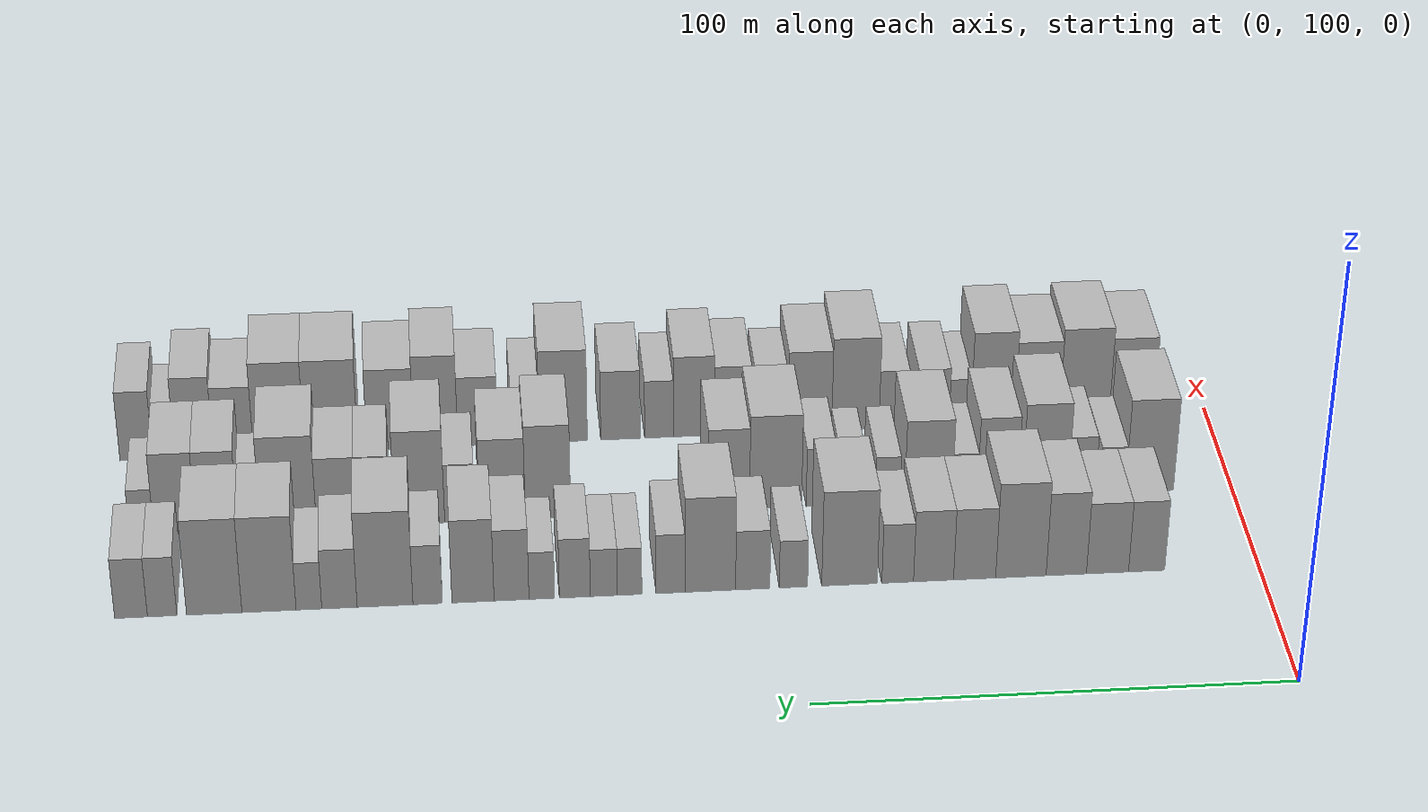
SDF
<sdf version="1.6">
 <world name="default">
  <model name="building_47">
   <static>1</static>
   <pose>50.0000 124.1388 0 0.000000 0.000000 0.000000</pose>
   <link name="link">
    <pose>0 0 9.00 0 0 0</pose>
    <collision name="collision"><geometry><box><size>20.0000 7.7543 18.0000</size></box></geometry></collision>
    <visual name="visual">
     <cast_shadows>0</cast_shadows>
     <geometry><box><size>20.0000 7.7543 18.0000</size></box></geometry>
     <material>
      <script>
       <uri>model://HANNAS_wall/materials/scripts</uri>
       <uri>model://HANNAS_wall/materials/textures</uri>
       <name>vrc/HANNAS_wall</name>
      </script>
     </material>
    </visual>
   </link>
  </model>
  <model name="building_48">
   <static>1</static>
   <pose>50.0000 132.5141 0 0.000000 0.000000 0.000000</pose>
   <link name="link">
    <pose>0 0 9.00 0 0 0</pose>
    <collision name="collision"><geometry><box><size>20.0000 8.9964 18.0000</size></box></geometry></collision>
    <visual name="visual">
     <cast_shadows>0</cast_shadows>
     <geometry><box><size>20.0000 8.9964 18.0000</size></box></geometry>
     <material>
      <script>
       <uri>model://HANNAS_wall/materials/scripts</uri>
       <uri>model://HANNAS_wall/materials/textures</uri>
       <name>vrc/HANNAS_wall</name>
      </script>
     </material>
    </visual>
   </link>
  </model>
  <model name="building_49">
   <static>1</static>
   <pose>50.0000 141.3249 0 0.000000 0.000000 0.000000</pose>
   <link name="link">
    <pose>0 0 10.50 0 0 0</pose>
    <collision name="collision"><geometry><box><size>20.0000 8.6251 21.0000</size></box></geometry></collision>
    <visual name="visual">
     <cast_shadows>0</cast_shadows>
     <geometry><box><size>20.0000 8.6251 21.0000</size></box></geometry>
     <material>
      <script>
       <uri>model://HANNAS_wall/materials/scripts</uri>
       <uri>model://HANNAS_wall/materials/textures</uri>
       <name>vrc/HANNAS_wall</name>
      </script>
     </material>
    </visual>
   </link>
  </model>
  <model name="building_50">
   <static>1</static>
   <pose>50.0000 151.0222 0 0.000000 0.000000 0.000000</pose>
   <link name="link">
    <pose>0 0 12.00 0 0 0</pose>
    <collision name="collision"><geometry><box><size>20.0000 10.7695 24.0000</size></box></geometry></collision>
    <visual name="visual">
     <cast_shadows>0</cast_shadows>
     <geometry><box><size>20.0000 10.7695 24.0000</size></box></geometry>
     <material>
      <script>
       <uri>model://HANNAS_wall/materials/scripts</uri>
       <uri>model://HANNAS_wall/materials/textures</uri>
       <name>vrc/HANNAS_wall</name>
      </script>
     </material>
    </visual>
   </link>
  </model>
  <model name="building_51">
   <static>1</static>
   <pose>50.0000 160.8869 0 0.000000 0.000000 0.000000</pose>
   <link name="link">
    <pose>0 0 9.00 0 0 0</pose>
    <collision name="collision"><geometry><box><size>20.0000 8.9600 18.0000</size></box></geometry></collision>
    <visual name="visual">
     <cast_shadows>0</cast_shadows>
     <geometry><box><size>20.0000 8.9600 18.0000</size></box></geometry>
     <material>
      <script>
       <uri>model://HANNAS_wall/materials/scripts</uri>
       <uri>model://HANNAS_wall/materials/textures</uri>
       <name>vrc/HANNAS_wall</name>
      </script>
     </material>
    </visual>
   </link>
  </model>
  <model name="building_52">
   <static>1</static>
   <pose>50.0000 169.6268 0 0.000000 0.000000 0.000000</pose>
   <link name="link">
    <pose>0 0 9.00 0 0 0</pose>
    <collision name="collision"><geometry><box><size>20.0000 8.5196 18.0000</size></box></geometry></collision>
    <visual name="visual">
     <cast_shadows>0</cast_shadows>
     <geometry><box><size>20.0000 8.5196 18.0000</size></box></geometry>
     <material>
      <script>
       <uri>model://HANNAS_wall/materials/scripts</uri>
       <uri>model://HANNAS_wall/materials/textures</uri>
       <name>vrc/HANNAS_wall</name>
      </script>
     </material>
    </visual>
   </link>
  </model>
  <model name="building_53">
   <static>1</static>
   <pose>50.0000 177.2516 0 0.000000 0.000000 0.000000</pose>
   <link name="link">
    <pose>0 0 7.50 0 0 0</pose>
    <collision name="collision"><geometry><box><size>20.0000 6.7302 15.0000</size></box></geometry></collision>
    <visual name="visual">
     <cast_shadows>0</cast_shadows>
     <geometry><box><size>20.0000 6.7302 15.0000</size></box></geometry>
     <material>
      <script>
       <uri>model://HANNAS_wall/materials/scripts</uri>
       <uri>model://HANNAS_wall/materials/textures</uri>
       <name>vrc/HANNAS_wall</name>
      </script>
     </material>
    </visual>
   </link>
  </model>
  <model name="building_54">
   <static>1</static>
   <pose>50.0000 187.4928 0 0.000000 0.000000 0.000000</pose>
   <link name="link">
    <pose>0 0 12.00 0 0 0</pose>
    <collision name="collision"><geometry><box><size>20.0000 11.7522 24.0000</size></box></geometry></collision>
    <visual name="visual">
     <cast_shadows>0</cast_shadows>
     <geometry><box><size>20.0000 11.7522 24.0000</size></box></geometry>
     <material>
      <script>
       <uri>model://HANNAS_wall/materials/scripts</uri>
       <uri>model://HANNAS_wall/materials/textures</uri>
       <name>vrc/HANNAS_wall</name>
      </script>
     </material>
    </visual>
   </link>
  </model>
  <model name="building_55">
   <static>1</static>
   <pose>50.0000 199.3592 0 0.000000 0.000000 0.000000</pose>
   <link name="link">
    <pose>0 0 6.00 0 0 0</pose>
    <collision name="collision"><geometry><box><size>20.0000 5.9805 12.0000</size></box></geometry></collision>
    <visual name="visual">
     <cast_shadows>0</cast_shadows>
     <geometry><box><size>20.0000 5.9805 12.0000</size></box></geometry>
     <material>
      <script>
       <uri>model://HANNAS_wall/materials/scripts</uri>
       <uri>model://HANNAS_wall/materials/textures</uri>
       <name>vrc/HANNAS_wall</name>
      </script>
     </material>
    </visual>
   </link>
  </model>
  <model name="building_56">
   <static>1</static>
   <pose>50.0000 207.9593 0 0.000000 0.000000 0.000000</pose>
   <link name="link">
    <pose>0 0 7.50 0 0 0</pose>
    <collision name="collision"><geometry><box><size>20.0000 7.2197 15.0000</size></box></geometry></collision>
    <visual name="visual">
     <cast_shadows>0</cast_shadows>
     <geometry><box><size>20.0000 7.2197 15.0000</size></box></geometry>
     <material>
      <script>
       <uri>model://HANNAS_wall/materials/scripts</uri>
       <uri>model://HANNAS_wall/materials/textures</uri>
       <name>vrc/HANNAS_wall</name>
      </script>
     </material>
    </visual>
   </link>
  </model>
  <model name="building_57">
   <static>1</static>
   <pose>50.0000 216.9235 0 0.000000 0.000000 0.000000</pose>
   <link name="link">
    <pose>0 0 12.00 0 0 0</pose>
    <collision name="collision"><geometry><box><size>20.0000 10.7086 24.0000</size></box></geometry></collision>
    <visual name="visual">
     <cast_shadows>0</cast_shadows>
     <geometry><box><size>20.0000 10.7086 24.0000</size></box></geometry>
     <material>
      <script>
       <uri>model://HANNAS_wall/materials/scripts</uri>
       <uri>model://HANNAS_wall/materials/textures</uri>
       <name>vrc/HANNAS_wall</name>
      </script>
     </material>
    </visual>
   </link>
  </model>
  <model name="building_58">
   <static>1</static>
   <pose>50.0000 225.3193 0 0.000000 0.000000 0.000000</pose>
   <link name="link">
    <pose>0 0 7.50 0 0 0</pose>
    <collision name="collision"><geometry><box><size>20.0000 6.0830 15.0000</size></box></geometry></collision>
    <visual name="visual">
     <cast_shadows>0</cast_shadows>
     <geometry><box><size>20.0000 6.0830 15.0000</size></box></geometry>
     <material>
      <script>
       <uri>model://HANNAS_wall/materials/scripts</uri>
       <uri>model://HANNAS_wall/materials/textures</uri>
       <name>vrc/HANNAS_wall</name>
      </script>
     </material>
    </visual>
   </link>
  </model>
  <model name="building_59">
   <static>1</static>
   <pose>50.0000 233.9347 0 0.000000 0.000000 0.000000</pose>
   <link name="link">
    <pose>0 0 6.00 0 0 0</pose>
    <collision name="collision"><geometry><box><size>20.0000 5.1478 12.0000</size></box></geometry></collision>
    <visual name="visual">
     <cast_shadows>0</cast_shadows>
     <geometry><box><size>20.0000 5.1478 12.0000</size></box></geometry>
     <material>
      <script>
       <uri>model://HANNAS_wall/materials/scripts</uri>
       <uri>model://HANNAS_wall/materials/textures</uri>
       <name>vrc/HANNAS_wall</name>
      </script>
     </material>
    </visual>
   </link>
  </model>
  <model name="building_60">
   <static>1</static>
   <pose>50.0000 239.3554 0 0.000000 0.000000 0.000000</pose>
   <link name="link">
    <pose>0 0 6.00 0 0 0</pose>
    <collision name="collision"><geometry><box><size>20.0000 5.6937 12.0000</size></box></geometry></collision>
    <visual name="visual">
     <cast_shadows>0</cast_shadows>
     <geometry><box><size>20.0000 5.6937 12.0000</size></box></geometry>
     <material>
      <script>
       <uri>model://HANNAS_wall/materials/scripts</uri>
       <uri>model://HANNAS_wall/materials/textures</uri>
       <name>vrc/HANNAS_wall</name>
      </script>
     </material>
    </visual>
   </link>
  </model>
  <model name="building_61">
   <static>1</static>
   <pose>50.0000 245.4495 0 0.000000 0.000000 0.000000</pose>
   <link name="link">
    <pose>0 0 7.50 0 0 0</pose>
    <collision name="collision"><geometry><box><size>20.0000 6.4945 15.0000</size></box></geometry></collision>
    <visual name="visual">
     <cast_shadows>0</cast_shadows>
     <geometry><box><size>20.0000 6.4945 15.0000</size></box></geometry>
     <material>
      <script>
       <uri>model://HANNAS_wall/materials/scripts</uri>
       <uri>model://HANNAS_wall/materials/textures</uri>
       <name>vrc/HANNAS_wall</name>
      </script>
     </material>
    </visual>
   </link>
  </model>
  <model name="building_62">
   <static>1</static>
   <pose>50.0000 252.3858 0 0.000000 0.000000 0.000000</pose>
   <link name="link">
    <pose>0 0 6.00 0 0 0</pose>
    <collision name="collision"><geometry><box><size>20.0000 5.3780 12.0000</size></box></geometry></collision>
    <visual name="visual">
     <cast_shadows>0</cast_shadows>
     <geometry><box><size>20.0000 5.3780 12.0000</size></box></geometry>
     <material>
      <script>
       <uri>model://HANNAS_wall/materials/scripts</uri>
       <uri>model://HANNAS_wall/materials/textures</uri>
       <name>vrc/HANNAS_wall</name>
      </script>
     </material>
    </visual>
   </link>
  </model>
  <model name="building_63">
   <static>1</static>
   <pose>50.0000 258.7382 0 0.000000 0.000000 0.000000</pose>
   <link name="link">
    <pose>0 0 9.00 0 0 0</pose>
    <collision name="collision"><geometry><box><size>20.0000 7.3268 18.0000</size></box></geometry></collision>
    <visual name="visual">
     <cast_shadows>0</cast_shadows>
     <geometry><box><size>20.0000 7.3268 18.0000</size></box></geometry>
     <material>
      <script>
       <uri>model://HANNAS_wall/materials/scripts</uri>
       <uri>model://HANNAS_wall/materials/textures</uri>
       <name>vrc/HANNAS_wall</name>
      </script>
     </material>
    </visual>
   </link>
  </model>
  <model name="building_64">
   <static>1</static>
   <pose>50.0000 266.8054 0 0.000000 0.000000 0.000000</pose>
   <link name="link">
    <pose>0 0 10.50 0 0 0</pose>
    <collision name="collision"><geometry><box><size>20.0000 8.8077 21.0000</size></box></geometry></collision>
    <visual name="visual">
     <cast_shadows>0</cast_shadows>
     <geometry><box><size>20.0000 8.8077 21.0000</size></box></geometry>
     <material>
      <script>
       <uri>model://HANNAS_wall/materials/scripts</uri>
       <uri>model://HANNAS_wall/materials/textures</uri>
       <name>vrc/HANNAS_wall</name>
      </script>
     </material>
    </visual>
   </link>
  </model>
  <model name="building_65">
   <static>1</static>
   <pose>50.0000 276.2865 0 0.000000 0.000000 0.000000</pose>
   <link name="link">
    <pose>0 0 7.50 0 0 0</pose>
    <collision name="collision"><geometry><box><size>20.0000 6.1545 15.0000</size></box></geometry></collision>
    <visual name="visual">
     <cast_shadows>0</cast_shadows>
     <geometry><box><size>20.0000 6.1545 15.0000</size></box></geometry>
     <material>
      <script>
       <uri>model://HANNAS_wall/materials/scripts</uri>
       <uri>model://HANNAS_wall/materials/textures</uri>
       <name>vrc/HANNAS_wall</name>
      </script>
     </material>
    </visual>
   </link>
  </model>
  <model name="building_66">
   <static>1</static>
   <pose>50.0000 285.1901 0 0.000000 0.000000 0.000000</pose>
   <link name="link">
    <pose>0 0 12.00 0 0 0</pose>
    <collision name="collision"><geometry><box><size>20.0000 11.6526 24.0000</size></box></geometry></collision>
    <visual name="visual">
     <cast_shadows>0</cast_shadows>
     <geometry><box><size>20.0000 11.6526 24.0000</size></box></geometry>
     <material>
      <script>
       <uri>model://HANNAS_wall/materials/scripts</uri>
       <uri>model://HANNAS_wall/materials/textures</uri>
       <name>vrc/HANNAS_wall</name>
      </script>
     </material>
    </visual>
   </link>
  </model>
  <model name="building_67">
   <static>1</static>
   <pose>50.0000 294.7042 0 0.000000 0.000000 0.000000</pose>
   <link name="link">
    <pose>0 0 7.50 0 0 0</pose>
    <collision name="collision"><geometry><box><size>20.0000 7.3756 15.0000</size></box></geometry></collision>
    <visual name="visual">
     <cast_shadows>0</cast_shadows>
     <geometry><box><size>20.0000 7.3756 15.0000</size></box></geometry>
     <material>
      <script>
       <uri>model://HANNAS_wall/materials/scripts</uri>
       <uri>model://HANNAS_wall/materials/textures</uri>
       <name>vrc/HANNAS_wall</name>
      </script>
     </material>
    </visual>
   </link>
  </model>
  <model name="building_68">
   <static>1</static>
   <pose>50.0000 301.0635 0 0.000000 0.000000 0.000000</pose>
   <link name="link">
    <pose>0 0 6.00 0 0 0</pose>
    <collision name="collision"><geometry><box><size>20.0000 5.3430 12.0000</size></box></geometry></collision>
    <visual name="visual">
     <cast_shadows>0</cast_shadows>
     <geometry><box><size>20.0000 5.3430 12.0000</size></box></geometry>
     <material>
      <script>
       <uri>model://HANNAS_wall/materials/scripts</uri>
       <uri>model://HANNAS_wall/materials/textures</uri>
       <name>vrc/HANNAS_wall</name>
      </script>
     </material>
    </visual>
   </link>
  </model>
  <model name="building_69">
   <static>1</static>
   <pose>50.0000 309.3722 0 0.000000 0.000000 0.000000</pose>
   <link name="link">
    <pose>0 0 12.00 0 0 0</pose>
    <collision name="collision"><geometry><box><size>20.0000 11.2745 24.0000</size></box></geometry></collision>
    <visual name="visual">
     <cast_shadows>0</cast_shadows>
     <geometry><box><size>20.0000 11.2745 24.0000</size></box></geometry>
     <material>
      <script>
       <uri>model://HANNAS_wall/materials/scripts</uri>
       <uri>model://HANNAS_wall/materials/textures</uri>
       <name>vrc/HANNAS_wall</name>
      </script>
     </material>
    </visual>
   </link>
  </model>
  <model name="building_70">
   <static>1</static>
   <pose>50.0000 320.7530 0 0.000000 0.000000 0.000000</pose>
   <link name="link">
    <pose>0 0 12.00 0 0 0</pose>
    <collision name="collision"><geometry><box><size>20.0000 11.4869 24.0000</size></box></geometry></collision>
    <visual name="visual">
     <cast_shadows>0</cast_shadows>
     <geometry><box><size>20.0000 11.4869 24.0000</size></box></geometry>
     <material>
      <script>
       <uri>model://HANNAS_wall/materials/scripts</uri>
       <uri>model://HANNAS_wall/materials/textures</uri>
       <name>vrc/HANNAS_wall</name>
      </script>
     </material>
    </visual>
   </link>
  </model>
  <model name="building_71">
   <static>1</static>
   <pose>50.0000 331.5462 0 0.000000 0.000000 0.000000</pose>
   <link name="link">
    <pose>0 0 7.50 0 0 0</pose>
    <collision name="collision"><geometry><box><size>20.0000 6.0995 15.0000</size></box></geometry></collision>
    <visual name="visual">
     <cast_shadows>0</cast_shadows>
     <geometry><box><size>20.0000 6.0995 15.0000</size></box></geometry>
     <material>
      <script>
       <uri>model://HANNAS_wall/materials/scripts</uri>
       <uri>model://HANNAS_wall/materials/textures</uri>
       <name>vrc/HANNAS_wall</name>
      </script>
     </material>
    </visual>
   </link>
  </model>
  <model name="building_72">
   <static>1</static>
   <pose>50.0000 337.9942 0 0.000000 0.000000 0.000000</pose>
   <link name="link">
    <pose>0 0 7.50 0 0 0</pose>
    <collision name="collision"><geometry><box><size>20.0000 6.7965 15.0000</size></box></geometry></collision>
    <visual name="visual">
     <cast_shadows>0</cast_shadows>
     <geometry><box><size>20.0000 6.7965 15.0000</size></box></geometry>
     <material>
      <script>
       <uri>model://HANNAS_wall/materials/scripts</uri>
       <uri>model://HANNAS_wall/materials/textures</uri>
       <name>vrc/HANNAS_wall</name>
      </script>
     </material>
    </visual>
   </link>
  </model>
  <model name="building_122">
   <static>1</static>
   <pose>79.0000 118.2771 0 0.000000 0.000000 0.000000</pose>
   <link name="link">
    <pose>0 0 12.00 0 0 0</pose>
    <collision name="collision"><geometry><box><size>20.0000 10.6277 24.0000</size></box></geometry></collision>
    <visual name="visual">
     <cast_shadows>0</cast_shadows>
     <geometry><box><size>20.0000 10.6277 24.0000</size></box></geometry>
     <material>
      <script>
       <uri>model://HANNAS_wall/materials/scripts</uri>
       <uri>model://HANNAS_wall/materials/textures</uri>
       <name>vrc/HANNAS_wall</name>
      </script>
     </material>
    </visual>
   </link>
  </model>
  <model name="building_123">
   <static>1</static>
   <pose>79.0000 126.4163 0 0.000000 0.000000 0.000000</pose>
   <link name="link">
    <pose>0 0 6.00 0 0 0</pose>
    <collision name="collision"><geometry><box><size>20.0000 5.6508 12.0000</size></box></geometry></collision>
    <visual name="visual">
     <cast_shadows>0</cast_shadows>
     <geometry><box><size>20.0000 5.6508 12.0000</size></box></geometry>
     <material>
      <script>
       <uri>model://HANNAS_wall/materials/scripts</uri>
       <uri>model://HANNAS_wall/materials/textures</uri>
       <name>vrc/HANNAS_wall</name>
      </script>
     </material>
    </visual>
   </link>
  </model>
  <model name="building_124">
   <static>1</static>
   <pose>79.0000 133.2450 0 0.000000 0.000000 0.000000</pose>
   <link name="link">
    <pose>0 0 7.50 0 0 0</pose>
    <collision name="collision"><geometry><box><size>20.0000 6.0065 15.0000</size></box></geometry></collision>
    <visual name="visual">
     <cast_shadows>0</cast_shadows>
     <geometry><box><size>20.0000 6.0065 15.0000</size></box></geometry>
     <material>
      <script>
       <uri>model://HANNAS_wall/materials/scripts</uri>
       <uri>model://HANNAS_wall/materials/textures</uri>
       <name>vrc/HANNAS_wall</name>
      </script>
     </material>
    </visual>
   </link>
  </model>
  <model name="building_125">
   <static>1</static>
   <pose>79.0000 141.2946 0 0.000000 0.000000 0.000000</pose>
   <link name="link">
    <pose>0 0 12.00 0 0 0</pose>
    <collision name="collision"><geometry><box><size>20.0000 10.0927 24.0000</size></box></geometry></collision>
    <visual name="visual">
     <cast_shadows>0</cast_shadows>
     <geometry><box><size>20.0000 10.0927 24.0000</size></box></geometry>
     <material>
      <script>
       <uri>model://HANNAS_wall/materials/scripts</uri>
       <uri>model://HANNAS_wall/materials/textures</uri>
       <name>vrc/HANNAS_wall</name>
      </script>
     </material>
    </visual>
   </link>
  </model>
  <model name="building_126">
   <static>1</static>
   <pose>79.0000 151.7759 0 0.000000 0.000000 0.000000</pose>
   <link name="link">
    <pose>0 0 10.50 0 0 0</pose>
    <collision name="collision"><geometry><box><size>20.0000 8.8700 21.0000</size></box></geometry></collision>
    <visual name="visual">
     <cast_shadows>0</cast_shadows>
     <geometry><box><size>20.0000 8.8700 21.0000</size></box></geometry>
     <material>
      <script>
       <uri>model://HANNAS_wall/materials/scripts</uri>
       <uri>model://HANNAS_wall/materials/textures</uri>
       <name>vrc/HANNAS_wall</name>
      </script>
     </material>
    </visual>
   </link>
  </model>
  <model name="building_127">
   <static>1</static>
   <pose>79.0000 158.9594 0 0.000000 0.000000 0.000000</pose>
   <link name="link">
    <pose>0 0 6.00 0 0 0</pose>
    <collision name="collision"><geometry><box><size>20.0000 5.4968 12.0000</size></box></geometry></collision>
    <visual name="visual">
     <cast_shadows>0</cast_shadows>
     <geometry><box><size>20.0000 5.4968 12.0000</size></box></geometry>
     <material>
      <script>
       <uri>model://HANNAS_wall/materials/scripts</uri>
       <uri>model://HANNAS_wall/materials/textures</uri>
       <name>vrc/HANNAS_wall</name>
      </script>
     </material>
    </visual>
   </link>
  </model>
  <model name="building_128">
   <static>1</static>
   <pose>79.0000 166.9218 0 0.000000 0.000000 0.000000</pose>
   <link name="link">
    <pose>0 0 10.50 0 0 0</pose>
    <collision name="collision"><geometry><box><size>20.0000 10.4281 21.0000</size></box></geometry></collision>
    <visual name="visual">
     <cast_shadows>0</cast_shadows>
     <geometry><box><size>20.0000 10.4281 21.0000</size></box></geometry>
     <material>
      <script>
       <uri>model://HANNAS_wall/materials/scripts</uri>
       <uri>model://HANNAS_wall/materials/textures</uri>
       <name>vrc/HANNAS_wall</name>
      </script>
     </material>
    </visual>
   </link>
  </model>
  <model name="building_129">
   <static>1</static>
   <pose>79.0000 175.8440 0 0.000000 0.000000 0.000000</pose>
   <link name="link">
    <pose>0 0 6.00 0 0 0</pose>
    <collision name="collision"><geometry><box><size>20.0000 5.4162 12.0000</size></box></geometry></collision>
    <visual name="visual">
     <cast_shadows>0</cast_shadows>
     <geometry><box><size>20.0000 5.4162 12.0000</size></box></geometry>
     <material>
      <script>
       <uri>model://HANNAS_wall/materials/scripts</uri>
       <uri>model://HANNAS_wall/materials/textures</uri>
       <name>vrc/HANNAS_wall</name>
      </script>
     </material>
    </visual>
   </link>
  </model>
  <model name="building_130">
   <static>1</static>
   <pose>79.0000 183.3637 0 0.000000 0.000000 0.000000</pose>
   <link name="link">
    <pose>0 0 6.00 0 0 0</pose>
    <collision name="collision"><geometry><box><size>20.0000 5.6232 12.0000</size></box></geometry></collision>
    <visual name="visual">
     <cast_shadows>0</cast_shadows>
     <geometry><box><size>20.0000 5.6232 12.0000</size></box></geometry>
     <material>
      <script>
       <uri>model://HANNAS_wall/materials/scripts</uri>
       <uri>model://HANNAS_wall/materials/textures</uri>
       <name>vrc/HANNAS_wall</name>
      </script>
     </material>
    </visual>
   </link>
  </model>
  <model name="building_131">
   <static>1</static>
   <pose>79.0000 190.4078 0 0.000000 0.000000 0.000000</pose>
   <link name="link">
    <pose>0 0 7.50 0 0 0</pose>
    <collision name="collision"><geometry><box><size>20.0000 6.4651 15.0000</size></box></geometry></collision>
    <visual name="visual">
     <cast_shadows>0</cast_shadows>
     <geometry><box><size>20.0000 6.4651 15.0000</size></box></geometry>
     <material>
      <script>
       <uri>model://HANNAS_wall/materials/scripts</uri>
       <uri>model://HANNAS_wall/materials/textures</uri>
       <name>vrc/HANNAS_wall</name>
      </script>
     </material>
    </visual>
   </link>
  </model>
  <model name="building_132">
   <static>1</static>
   <pose>79.0000 200.3008 0 0.000000 0.000000 0.000000</pose>
   <link name="link">
    <pose>0 0 12.00 0 0 0</pose>
    <collision name="collision"><geometry><box><size>20.0000 11.3209 24.0000</size></box></geometry></collision>
    <visual name="visual">
     <cast_shadows>0</cast_shadows>
     <geometry><box><size>20.0000 11.3209 24.0000</size></box></geometry>
     <material>
      <script>
       <uri>model://HANNAS_wall/materials/scripts</uri>
       <uri>model://HANNAS_wall/materials/textures</uri>
       <name>vrc/HANNAS_wall</name>
      </script>
     </material>
    </visual>
   </link>
  </model>
  <model name="building_133">
   <static>1</static>
   <pose>79.0000 210.4790 0 0.000000 0.000000 0.000000</pose>
   <link name="link">
    <pose>0 0 10.50 0 0 0</pose>
    <collision name="collision"><geometry><box><size>20.0000 9.0355 21.0000</size></box></geometry></collision>
    <visual name="visual">
     <cast_shadows>0</cast_shadows>
     <geometry><box><size>20.0000 9.0355 21.0000</size></box></geometry>
     <material>
      <script>
       <uri>model://HANNAS_wall/materials/scripts</uri>
       <uri>model://HANNAS_wall/materials/textures</uri>
       <name>vrc/HANNAS_wall</name>
      </script>
     </material>
    </visual>
   </link>
  </model>
  <model name="building_134">
   <static>1</static>
   <pose>79.0000 249.7088 0 0.000000 0.000000 0.000000</pose>
   <link name="link">
    <pose>0 0 12.00 0 0 0</pose>
    <collision name="collision"><geometry><box><size>20.0000 9.8080 24.0000</size></box></geometry></collision>
    <visual name="visual">
     <cast_shadows>0</cast_shadows>
     <geometry><box><size>20.0000 9.8080 24.0000</size></box></geometry>
     <material>
      <script>
       <uri>model://HANNAS_wall/materials/scripts</uri>
       <uri>model://HANNAS_wall/materials/textures</uri>
       <name>vrc/HANNAS_wall</name>
      </script>
     </material>
    </visual>
   </link>
  </model>
  <model name="building_135">
   <static>1</static>
   <pose>79.0000 259.5466 0 0.000000 0.000000 0.000000</pose>
   <link name="link">
    <pose>0 0 10.50 0 0 0</pose>
    <collision name="collision"><geometry><box><size>20.0000 9.8675 21.0000</size></box></geometry></collision>
    <visual name="visual">
     <cast_shadows>0</cast_shadows>
     <geometry><box><size>20.0000 9.8675 21.0000</size></box></geometry>
     <material>
      <script>
       <uri>model://HANNAS_wall/materials/scripts</uri>
       <uri>model://HANNAS_wall/materials/textures</uri>
       <name>vrc/HANNAS_wall</name>
      </script>
     </material>
    </visual>
   </link>
  </model>
  <model name="building_136">
   <static>1</static>
   <pose>79.0000 268.7499 0 0.000000 0.000000 0.000000</pose>
   <link name="link">
    <pose>0 0 7.50 0 0 0</pose>
    <collision name="collision"><geometry><box><size>20.0000 6.5391 15.0000</size></box></geometry></collision>
    <visual name="visual">
     <cast_shadows>0</cast_shadows>
     <geometry><box><size>20.0000 6.5391 15.0000</size></box></geometry>
     <material>
      <script>
       <uri>model://HANNAS_wall/materials/scripts</uri>
       <uri>model://HANNAS_wall/materials/textures</uri>
       <name>vrc/HANNAS_wall</name>
      </script>
     </material>
    </visual>
   </link>
  </model>
  <model name="building_137">
   <static>1</static>
   <pose>79.0000 277.3792 0 0.000000 0.000000 0.000000</pose>
   <link name="link">
    <pose>0 0 12.00 0 0 0</pose>
    <collision name="collision"><geometry><box><size>20.0000 10.7196 24.0000</size></box></geometry></collision>
    <visual name="visual">
     <cast_shadows>0</cast_shadows>
     <geometry><box><size>20.0000 10.7196 24.0000</size></box></geometry>
     <material>
      <script>
       <uri>model://HANNAS_wall/materials/scripts</uri>
       <uri>model://HANNAS_wall/materials/textures</uri>
       <name>vrc/HANNAS_wall</name>
      </script>
     </material>
    </visual>
   </link>
  </model>
  <model name="building_138">
   <static>1</static>
   <pose>79.0000 287.3636 0 0.000000 0.000000 0.000000</pose>
   <link name="link">
    <pose>0 0 9.00 0 0 0</pose>
    <collision name="collision"><geometry><box><size>20.0000 7.2493 18.0000</size></box></geometry></collision>
    <visual name="visual">
     <cast_shadows>0</cast_shadows>
     <geometry><box><size>20.0000 7.2493 18.0000</size></box></geometry>
     <material>
      <script>
       <uri>model://HANNAS_wall/materials/scripts</uri>
       <uri>model://HANNAS_wall/materials/textures</uri>
       <name>vrc/HANNAS_wall</name>
      </script>
     </material>
    </visual>
   </link>
  </model>
  <model name="building_139">
   <static>1</static>
   <pose>79.0000 295.2882 0 0.000000 0.000000 0.000000</pose>
   <link name="link">
    <pose>0 0 9.00 0 0 0</pose>
    <collision name="collision"><geometry><box><size>20.0000 8.5998 18.0000</size></box></geometry></collision>
    <visual name="visual">
     <cast_shadows>0</cast_shadows>
     <geometry><box><size>20.0000 8.5998 18.0000</size></box></geometry>
     <material>
      <script>
       <uri>model://HANNAS_wall/materials/scripts</uri>
       <uri>model://HANNAS_wall/materials/textures</uri>
       <name>vrc/HANNAS_wall</name>
      </script>
     </material>
    </visual>
   </link>
  </model>
  <model name="building_140">
   <static>1</static>
   <pose>79.0000 305.5865 0 0.000000 0.000000 0.000000</pose>
   <link name="link">
    <pose>0 0 12.00 0 0 0</pose>
    <collision name="collision"><geometry><box><size>20.0000 11.9968 24.0000</size></box></geometry></collision>
    <visual name="visual">
     <cast_shadows>0</cast_shadows>
     <geometry><box><size>20.0000 11.9968 24.0000</size></box></geometry>
     <material>
      <script>
       <uri>model://HANNAS_wall/materials/scripts</uri>
       <uri>model://HANNAS_wall/materials/textures</uri>
       <name>vrc/HANNAS_wall</name>
      </script>
     </material>
    </visual>
   </link>
  </model>
  <model name="building_141">
   <static>1</static>
   <pose>79.0000 313.9857 0 0.000000 0.000000 0.000000</pose>
   <link name="link">
    <pose>0 0 6.00 0 0 0</pose>
    <collision name="collision"><geometry><box><size>20.0000 4.8015 12.0000</size></box></geometry></collision>
    <visual name="visual">
     <cast_shadows>0</cast_shadows>
     <geometry><box><size>20.0000 4.8015 12.0000</size></box></geometry>
     <material>
      <script>
       <uri>model://HANNAS_wall/materials/scripts</uri>
       <uri>model://HANNAS_wall/materials/textures</uri>
       <name>vrc/HANNAS_wall</name>
      </script>
     </material>
    </visual>
   </link>
  </model>
  <model name="building_142">
   <static>1</static>
   <pose>79.0000 320.8526 0 0.000000 0.000000 0.000000</pose>
   <link name="link">
    <pose>0 0 10.50 0 0 0</pose>
    <collision name="collision"><geometry><box><size>20.0000 8.9324 21.0000</size></box></geometry></collision>
    <visual name="visual">
     <cast_shadows>0</cast_shadows>
     <geometry><box><size>20.0000 8.9324 21.0000</size></box></geometry>
     <material>
      <script>
       <uri>model://HANNAS_wall/materials/scripts</uri>
       <uri>model://HANNAS_wall/materials/textures</uri>
       <name>vrc/HANNAS_wall</name>
      </script>
     </material>
    </visual>
   </link>
  </model>
  <model name="building_143">
   <static>1</static>
   <pose>79.0000 329.8533 0 0.000000 0.000000 0.000000</pose>
   <link name="link">
    <pose>0 0 10.50 0 0 0</pose>
    <collision name="collision"><geometry><box><size>20.0000 9.0689 21.0000</size></box></geometry></collision>
    <visual name="visual">
     <cast_shadows>0</cast_shadows>
     <geometry><box><size>20.0000 9.0689 21.0000</size></box></geometry>
     <material>
      <script>
       <uri>model://HANNAS_wall/materials/scripts</uri>
       <uri>model://HANNAS_wall/materials/textures</uri>
       <name>vrc/HANNAS_wall</name>
      </script>
     </material>
    </visual>
   </link>
  </model>
  <model name="building_144">
   <static>1</static>
   <pose>79.0000 336.9831 0 0.000000 0.000000 0.000000</pose>
   <link name="link">
    <pose>0 0 6.00 0 0 0</pose>
    <collision name="collision"><geometry><box><size>20.0000 5.1907 12.0000</size></box></geometry></collision>
    <visual name="visual">
     <cast_shadows>0</cast_shadows>
     <geometry><box><size>20.0000 5.1907 12.0000</size></box></geometry>
     <material>
      <script>
       <uri>model://HANNAS_wall/materials/scripts</uri>
       <uri>model://HANNAS_wall/materials/textures</uri>
       <name>vrc/HANNAS_wall</name>
      </script>
     </material>
    </visual>
   </link>
  </model>
  <model name="building_197">
   <static>1</static>
   <pose>108.0000 117.0814 0 0.000000 0.000000 0.000000</pose>
   <link name="link">
    <pose>0 0 10.50 0 0 0</pose>
    <collision name="collision"><geometry><box><size>20.0000 10.1379 21.0000</size></box></geometry></collision>
    <visual name="visual">
     <cast_shadows>0</cast_shadows>
     <geometry><box><size>20.0000 10.1379 21.0000</size></box></geometry>
     <material>
      <script>
       <uri>model://HANNAS_wall/materials/scripts</uri>
       <uri>model://HANNAS_wall/materials/textures</uri>
       <name>vrc/HANNAS_wall</name>
      </script>
     </material>
    </visual>
   </link>
  </model>
  <model name="building_198">
   <static>1</static>
   <pose>108.0000 127.7948 0 0.000000 0.000000 0.000000</pose>
   <link name="link">
    <pose>0 0 12.00 0 0 0</pose>
    <collision name="collision"><geometry><box><size>20.0000 11.2889 24.0000</size></box></geometry></collision>
    <visual name="visual">
     <cast_shadows>0</cast_shadows>
     <geometry><box><size>20.0000 11.2889 24.0000</size></box></geometry>
     <material>
      <script>
       <uri>model://HANNAS_wall/materials/scripts</uri>
       <uri>model://HANNAS_wall/materials/textures</uri>
       <name>vrc/HANNAS_wall</name>
      </script>
     </material>
    </visual>
   </link>
  </model>
  <model name="building_199">
   <static>1</static>
   <pose>108.0000 138.5087 0 0.000000 0.000000 0.000000</pose>
   <link name="link">
    <pose>0 0 10.50 0 0 0</pose>
    <collision name="collision"><geometry><box><size>20.0000 10.1390 21.0000</size></box></geometry></collision>
    <visual name="visual">
     <cast_shadows>0</cast_shadows>
     <geometry><box><size>20.0000 10.1390 21.0000</size></box></geometry>
     <material>
      <script>
       <uri>model://HANNAS_wall/materials/scripts</uri>
       <uri>model://HANNAS_wall/materials/textures</uri>
       <name>vrc/HANNAS_wall</name>
      </script>
     </material>
    </visual>
   </link>
  </model>
  <model name="building_200">
   <static>1</static>
   <pose>108.0000 148.5646 0 0.000000 0.000000 0.000000</pose>
   <link name="link">
    <pose>0 0 12.00 0 0 0</pose>
    <collision name="collision"><geometry><box><size>20.0000 9.9728 24.0000</size></box></geometry></collision>
    <visual name="visual">
     <cast_shadows>0</cast_shadows>
     <geometry><box><size>20.0000 9.9728 24.0000</size></box></geometry>
     <material>
      <script>
       <uri>model://HANNAS_wall/materials/scripts</uri>
       <uri>model://HANNAS_wall/materials/textures</uri>
       <name>vrc/HANNAS_wall</name>
      </script>
     </material>
    </visual>
   </link>
  </model>
  <model name="building_201">
   <static>1</static>
   <pose>108.0000 155.9838 0 0.000000 0.000000 0.000000</pose>
   <link name="link">
    <pose>0 0 6.00 0 0 0</pose>
    <collision name="collision"><geometry><box><size>20.0000 4.8656 12.0000</size></box></geometry></collision>
    <visual name="visual">
     <cast_shadows>0</cast_shadows>
     <geometry><box><size>20.0000 4.8656 12.0000</size></box></geometry>
     <material>
      <script>
       <uri>model://HANNAS_wall/materials/scripts</uri>
       <uri>model://HANNAS_wall/materials/textures</uri>
       <name>vrc/HANNAS_wall</name>
      </script>
     </material>
    </visual>
   </link>
  </model>
  <model name="building_202">
   <static>1</static>
   <pose>108.0000 162.0079 0 0.000000 0.000000 0.000000</pose>
   <link name="link">
    <pose>0 0 7.50 0 0 0</pose>
    <collision name="collision"><geometry><box><size>20.0000 7.1827 15.0000</size></box></geometry></collision>
    <visual name="visual">
     <cast_shadows>0</cast_shadows>
     <geometry><box><size>20.0000 7.1827 15.0000</size></box></geometry>
     <material>
      <script>
       <uri>model://HANNAS_wall/materials/scripts</uri>
       <uri>model://HANNAS_wall/materials/textures</uri>
       <name>vrc/HANNAS_wall</name>
      </script>
     </material>
    </visual>
   </link>
  </model>
  <model name="building_203">
   <static>1</static>
   <pose>108.0000 170.9105 0 0.000000 0.000000 0.000000</pose>
   <link name="link">
    <pose>0 0 7.50 0 0 0</pose>
    <collision name="collision"><geometry><box><size>20.0000 6.6224 15.0000</size></box></geometry></collision>
    <visual name="visual">
     <cast_shadows>0</cast_shadows>
     <geometry><box><size>20.0000 6.6224 15.0000</size></box></geometry>
     <material>
      <script>
       <uri>model://HANNAS_wall/materials/scripts</uri>
       <uri>model://HANNAS_wall/materials/textures</uri>
       <name>vrc/HANNAS_wall</name>
      </script>
     </material>
    </visual>
   </link>
  </model>
  <model name="building_204">
   <static>1</static>
   <pose>108.0000 179.5449 0 0.000000 0.000000 0.000000</pose>
   <link name="link">
    <pose>0 0 12.00 0 0 0</pose>
    <collision name="collision"><geometry><box><size>20.0000 10.6463 24.0000</size></box></geometry></collision>
    <visual name="visual">
     <cast_shadows>0</cast_shadows>
     <geometry><box><size>20.0000 10.6463 24.0000</size></box></geometry>
     <material>
      <script>
       <uri>model://HANNAS_wall/materials/scripts</uri>
       <uri>model://HANNAS_wall/materials/textures</uri>
       <name>vrc/HANNAS_wall</name>
      </script>
     </material>
    </visual>
   </link>
  </model>
  <model name="building_205">
   <static>1</static>
   <pose>108.0000 189.7673 0 0.000000 0.000000 0.000000</pose>
   <link name="link">
    <pose>0 0 10.50 0 0 0</pose>
    <collision name="collision"><geometry><box><size>20.0000 9.7984 21.0000</size></box></geometry></collision>
    <visual name="visual">
     <cast_shadows>0</cast_shadows>
     <geometry><box><size>20.0000 9.7984 21.0000</size></box></geometry>
     <material>
      <script>
       <uri>model://HANNAS_wall/materials/scripts</uri>
       <uri>model://HANNAS_wall/materials/textures</uri>
       <name>vrc/HANNAS_wall</name>
      </script>
     </material>
    </visual>
   </link>
  </model>
  <model name="building_206">
   <static>1</static>
   <pose>108.0000 198.3047 0 0.000000 0.000000 0.000000</pose>
   <link name="link">
    <pose>0 0 7.50 0 0 0</pose>
    <collision name="collision"><geometry><box><size>20.0000 7.2765 15.0000</size></box></geometry></collision>
    <visual name="visual">
     <cast_shadows>0</cast_shadows>
     <geometry><box><size>20.0000 7.2765 15.0000</size></box></geometry>
     <material>
      <script>
       <uri>model://HANNAS_wall/materials/scripts</uri>
       <uri>model://HANNAS_wall/materials/textures</uri>
       <name>vrc/HANNAS_wall</name>
      </script>
     </material>
    </visual>
   </link>
  </model>
  <model name="building_207">
   <static>1</static>
   <pose>108.0000 207.0989 0 0.000000 0.000000 0.000000</pose>
   <link name="link">
    <pose>0 0 9.00 0 0 0</pose>
    <collision name="collision"><geometry><box><size>20.0000 8.3119 18.0000</size></box></geometry></collision>
    <visual name="visual">
     <cast_shadows>0</cast_shadows>
     <geometry><box><size>20.0000 8.3119 18.0000</size></box></geometry>
     <material>
      <script>
       <uri>model://HANNAS_wall/materials/scripts</uri>
       <uri>model://HANNAS_wall/materials/textures</uri>
       <name>vrc/HANNAS_wall</name>
      </script>
     </material>
    </visual>
   </link>
  </model>
  <model name="building_208">
   <static>1</static>
   <pose>108.0000 215.8292 0 0.000000 0.000000 0.000000</pose>
   <link name="link">
    <pose>0 0 10.50 0 0 0</pose>
    <collision name="collision"><geometry><box><size>20.0000 9.1486 21.0000</size></box></geometry></collision>
    <visual name="visual">
     <cast_shadows>0</cast_shadows>
     <geometry><box><size>20.0000 9.1486 21.0000</size></box></geometry>
     <material>
      <script>
       <uri>model://HANNAS_wall/materials/scripts</uri>
       <uri>model://HANNAS_wall/materials/textures</uri>
       <name>vrc/HANNAS_wall</name>
      </script>
     </material>
    </visual>
   </link>
  </model>
  <model name="building_209">
   <static>1</static>
   <pose>108.0000 223.6047 0 0.000000 0.000000 0.000000</pose>
   <link name="link">
    <pose>0 0 7.50 0 0 0</pose>
    <collision name="collision"><geometry><box><size>20.0000 6.4025 15.0000</size></box></geometry></collision>
    <visual name="visual">
     <cast_shadows>0</cast_shadows>
     <geometry><box><size>20.0000 6.4025 15.0000</size></box></geometry>
     <material>
      <script>
       <uri>model://HANNAS_wall/materials/scripts</uri>
       <uri>model://HANNAS_wall/materials/textures</uri>
       <name>vrc/HANNAS_wall</name>
      </script>
     </material>
    </visual>
   </link>
  </model>
  <model name="building_210">
   <static>1</static>
   <pose>108.0000 232.2057 0 0.000000 0.000000 0.000000</pose>
   <link name="link">
    <pose>0 0 9.00 0 0 0</pose>
    <collision name="collision"><geometry><box><size>20.0000 8.7996 18.0000</size></box></geometry></collision>
    <visual name="visual">
     <cast_shadows>0</cast_shadows>
     <geometry><box><size>20.0000 8.7996 18.0000</size></box></geometry>
     <material>
      <script>
       <uri>model://HANNAS_wall/materials/scripts</uri>
       <uri>model://HANNAS_wall/materials/textures</uri>
       <name>vrc/HANNAS_wall</name>
      </script>
     </material>
    </visual>
   </link>
  </model>
  <model name="building_211">
   <static>1</static>
   <pose>108.0000 244.9463 0 0.000000 0.000000 0.000000</pose>
   <link name="link">
    <pose>0 0 12.00 0 0 0</pose>
    <collision name="collision"><geometry><box><size>20.0000 10.6815 24.0000</size></box></geometry></collision>
    <visual name="visual">
     <cast_shadows>0</cast_shadows>
     <geometry><box><size>20.0000 10.6815 24.0000</size></box></geometry>
     <material>
      <script>
       <uri>model://HANNAS_wall/materials/scripts</uri>
       <uri>model://HANNAS_wall/materials/textures</uri>
       <name>vrc/HANNAS_wall</name>
      </script>
     </material>
    </visual>
   </link>
  </model>
  <model name="building_212">
   <static>1</static>
   <pose>108.0000 253.4035 0 0.000000 0.000000 0.000000</pose>
   <link name="link">
    <pose>0 0 7.50 0 0 0</pose>
    <collision name="collision"><geometry><box><size>20.0000 6.2330 15.0000</size></box></geometry></collision>
    <visual name="visual">
     <cast_shadows>0</cast_shadows>
     <geometry><box><size>20.0000 6.2330 15.0000</size></box></geometry>
     <material>
      <script>
       <uri>model://HANNAS_wall/materials/scripts</uri>
       <uri>model://HANNAS_wall/materials/textures</uri>
       <name>vrc/HANNAS_wall</name>
      </script>
     </material>
    </visual>
   </link>
  </model>
  <model name="building_213">
   <static>1</static>
   <pose>108.0000 263.9572 0 0.000000 0.000000 0.000000</pose>
   <link name="link">
    <pose>0 0 9.00 0 0 0</pose>
    <collision name="collision"><geometry><box><size>20.0000 8.8744 18.0000</size></box></geometry></collision>
    <visual name="visual">
     <cast_shadows>0</cast_shadows>
     <geometry><box><size>20.0000 8.8744 18.0000</size></box></geometry>
     <material>
      <script>
       <uri>model://HANNAS_wall/materials/scripts</uri>
       <uri>model://HANNAS_wall/materials/textures</uri>
       <name>vrc/HANNAS_wall</name>
      </script>
     </material>
    </visual>
   </link>
  </model>
  <model name="building_214">
   <static>1</static>
   <pose>108.0000 273.2541 0 0.000000 0.000000 0.000000</pose>
   <link name="link">
    <pose>0 0 12.00 0 0 0</pose>
    <collision name="collision"><geometry><box><size>20.0000 9.7195 24.0000</size></box></geometry></collision>
    <visual name="visual">
     <cast_shadows>0</cast_shadows>
     <geometry><box><size>20.0000 9.7195 24.0000</size></box></geometry>
     <material>
      <script>
       <uri>model://HANNAS_wall/materials/scripts</uri>
       <uri>model://HANNAS_wall/materials/textures</uri>
       <name>vrc/HANNAS_wall</name>
      </script>
     </material>
    </visual>
   </link>
  </model>
  <model name="building_215">
   <static>1</static>
   <pose>108.0000 283.3191 0 0.000000 0.000000 0.000000</pose>
   <link name="link">
    <pose>0 0 10.50 0 0 0</pose>
    <collision name="collision"><geometry><box><size>20.0000 10.4106 21.0000</size></box></geometry></collision>
    <visual name="visual">
     <cast_shadows>0</cast_shadows>
     <geometry><box><size>20.0000 10.4106 21.0000</size></box></geometry>
     <material>
      <script>
       <uri>model://HANNAS_wall/materials/scripts</uri>
       <uri>model://HANNAS_wall/materials/textures</uri>
       <name>vrc/HANNAS_wall</name>
      </script>
     </material>
    </visual>
   </link>
  </model>
  <model name="building_216">
   <static>1</static>
   <pose>108.0000 296.4336 0 0.000000 0.000000 0.000000</pose>
   <link name="link">
    <pose>0 0 12.00 0 0 0</pose>
    <collision name="collision"><geometry><box><size>20.0000 11.8183 24.0000</size></box></geometry></collision>
    <visual name="visual">
     <cast_shadows>0</cast_shadows>
     <geometry><box><size>20.0000 11.8183 24.0000</size></box></geometry>
     <material>
      <script>
       <uri>model://HANNAS_wall/materials/scripts</uri>
       <uri>model://HANNAS_wall/materials/textures</uri>
       <name>vrc/HANNAS_wall</name>
      </script>
     </material>
    </visual>
   </link>
  </model>
  <model name="building_217">
   <static>1</static>
   <pose>108.0000 307.9767 0 0.000000 0.000000 0.000000</pose>
   <link name="link">
    <pose>0 0 12.00 0 0 0</pose>
    <collision name="collision"><geometry><box><size>20.0000 11.2679 24.0000</size></box></geometry></collision>
    <visual name="visual">
     <cast_shadows>0</cast_shadows>
     <geometry><box><size>20.0000 11.2679 24.0000</size></box></geometry>
     <material>
      <script>
       <uri>model://HANNAS_wall/materials/scripts</uri>
       <uri>model://HANNAS_wall/materials/textures</uri>
       <name>vrc/HANNAS_wall</name>
      </script>
     </material>
    </visual>
   </link>
  </model>
  <model name="building_218">
   <static>1</static>
   <pose>108.0000 318.0430 0 0.000000 0.000000 0.000000</pose>
   <link name="link">
    <pose>0 0 9.00 0 0 0</pose>
    <collision name="collision"><geometry><box><size>20.0000 8.8647 18.0000</size></box></geometry></collision>
    <visual name="visual">
     <cast_shadows>0</cast_shadows>
     <geometry><box><size>20.0000 8.8647 18.0000</size></box></geometry>
     <material>
      <script>
       <uri>model://HANNAS_wall/materials/scripts</uri>
       <uri>model://HANNAS_wall/materials/textures</uri>
       <name>vrc/HANNAS_wall</name>
      </script>
     </material>
    </visual>
   </link>
  </model>
  <model name="building_219">
   <static>1</static>
   <pose>108.0000 326.7023 0 0.000000 0.000000 0.000000</pose>
   <link name="link">
    <pose>0 0 10.50 0 0 0</pose>
    <collision name="collision"><geometry><box><size>20.0000 8.4539 21.0000</size></box></geometry></collision>
    <visual name="visual">
     <cast_shadows>0</cast_shadows>
     <geometry><box><size>20.0000 8.4539 21.0000</size></box></geometry>
     <material>
      <script>
       <uri>model://HANNAS_wall/materials/scripts</uri>
       <uri>model://HANNAS_wall/materials/textures</uri>
       <name>vrc/HANNAS_wall</name>
      </script>
     </material>
    </visual>
   </link>
  </model>
  <model name="building_220">
   <static>1</static>
   <pose>108.0000 333.3616 0 0.000000 0.000000 0.000000</pose>
   <link name="link">
    <pose>0 0 6.00 0 0 0</pose>
    <collision name="collision"><geometry><box><size>20.0000 4.8646 12.0000</size></box></geometry></collision>
    <visual name="visual">
     <cast_shadows>0</cast_shadows>
     <geometry><box><size>20.0000 4.8646 12.0000</size></box></geometry>
     <material>
      <script>
       <uri>model://HANNAS_wall/materials/scripts</uri>
       <uri>model://HANNAS_wall/materials/textures</uri>
       <name>vrc/HANNAS_wall</name>
      </script>
     </material>
    </visual>
   </link>
  </model>
  <model name="building_221">
   <static>1</static>
   <pose>108.0000 339.4251 0 0.000000 0.000000 0.000000</pose>
   <link name="link">
    <pose>0 0 9.00 0 0 0</pose>
    <collision name="collision"><geometry><box><size>20.0000 7.2623 18.0000</size></box></geometry></collision>
    <visual name="visual">
     <cast_shadows>0</cast_shadows>
     <geometry><box><size>20.0000 7.2623 18.0000</size></box></geometry>
     <material>
      <script>
       <uri>model://HANNAS_wall/materials/scripts</uri>
       <uri>model://HANNAS_wall/materials/textures</uri>
       <name>vrc/HANNAS_wall</name>
      </script>
     </material>
    </visual>
   </link>
  </model>
 </world>
</sdf>
